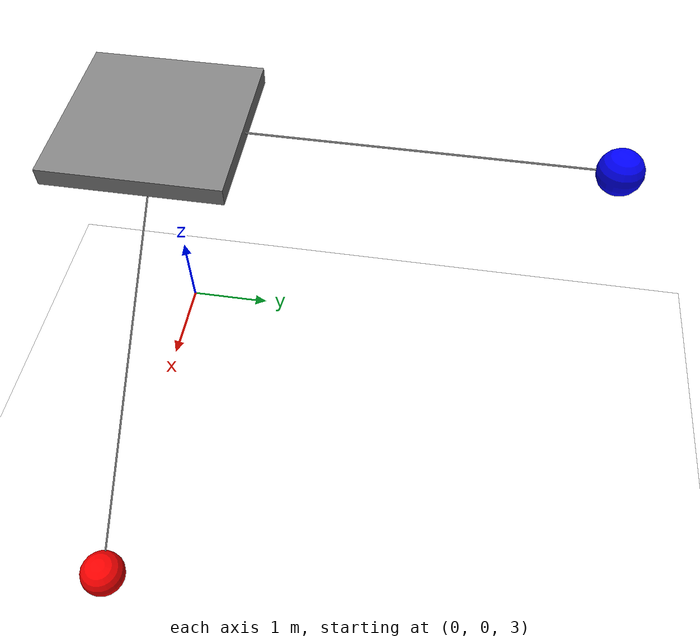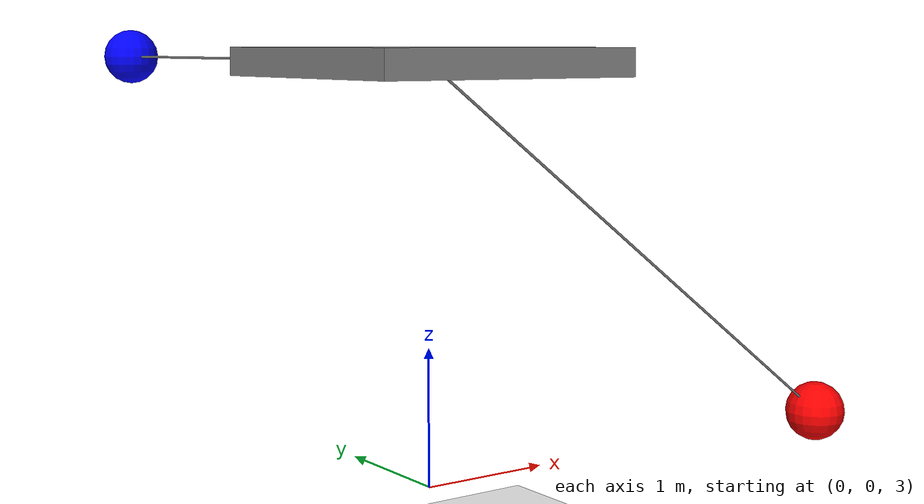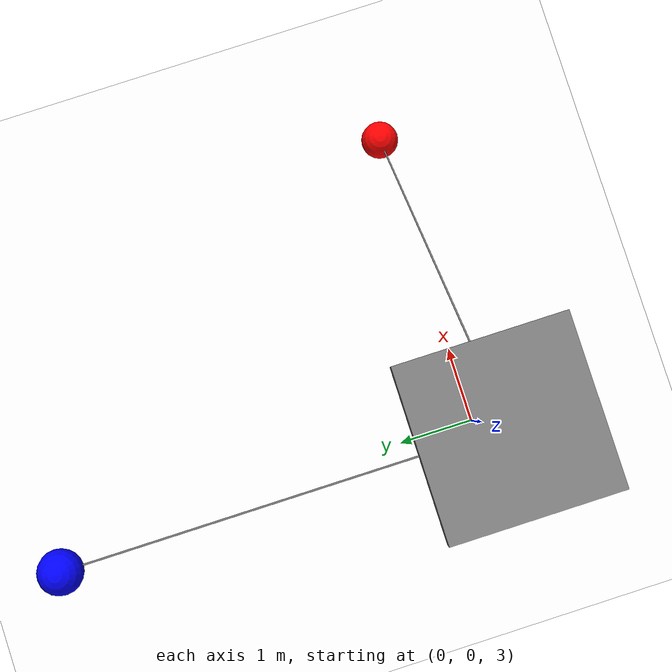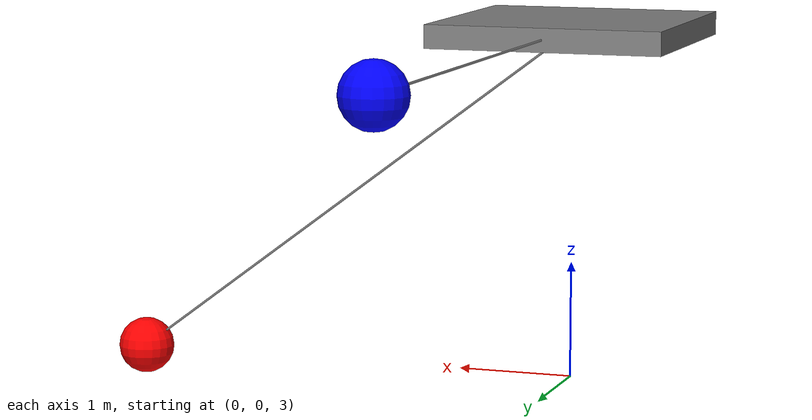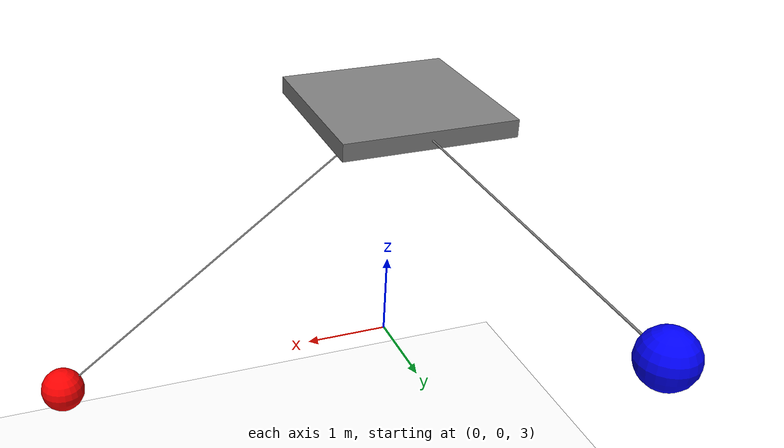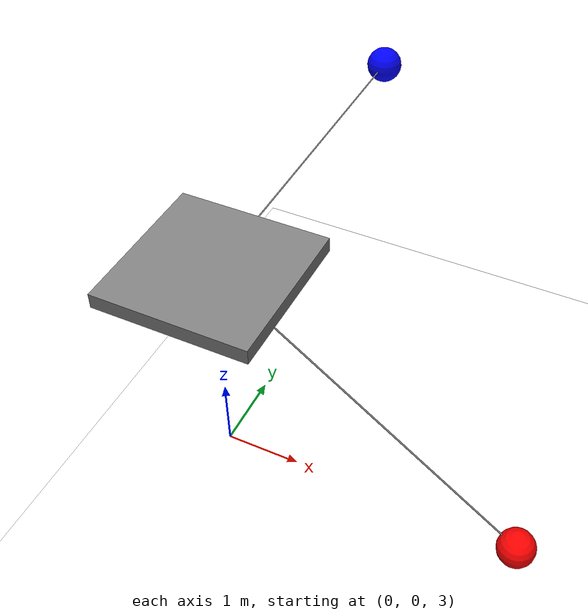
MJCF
<mujoco model="composite">

	<worldbody>
		<geom type="plane" size="0 0 0.1" rgba="1 1 1 1"/>
		<light pos="0 0 20" dir="0 0 -1"/>

		<body pos="0 0 6">
			<geom type="box" pos="0 0 0" size="1 1 0.1" rgba="0.5 0.5 0.5 1.0"/>
			<site name="end1" type="sphere" pos="0 0 0" size="0.1"/>
		</body>

		<body pos="4 0 3">
			<freejoint/>
			<geom type="sphere" pos="0 0 0" size="0.25" rgba="1 0 0 1"/>
			<site name="end2" type="sphere" pos="0 0 0" size="0.1"/>
		</body>

		<body pos="0 5 6">
			<freejoint/>
			<geom type="sphere" pos="0 0 0" size="0.25" rgba="0 0 1 1"/>
			<site name="end3" type="sphere" pos="0 0 0" size="0.1"/>
		</body>

	</worldbody>

	<tendon>
		<spatial limited="true" range="4.9 5.0" width="0.01">
			<site site="end1"/>
			<site site="end2"/>
		</spatial>

		<spatial limited="true" range="4.9 5.0" width="0.01">
			<site site="end1"/>
			<site site="end3"/>
		</spatial>
	</tendon>

</mujoco>
